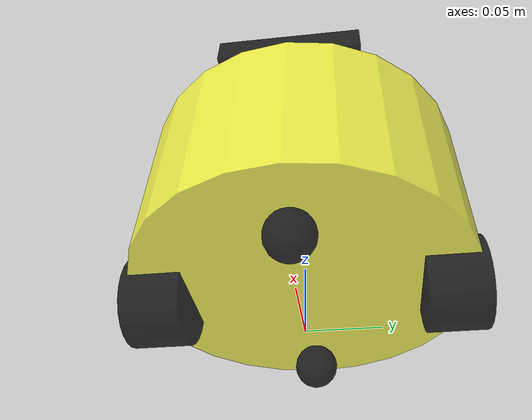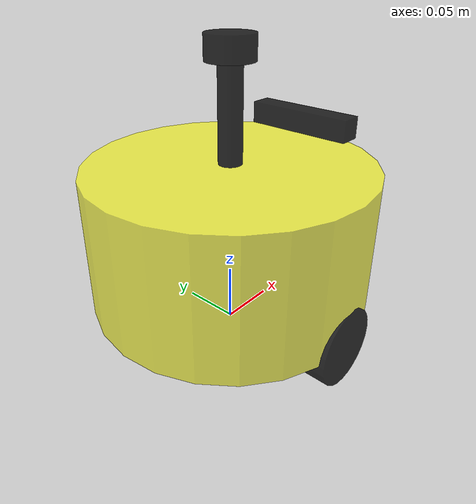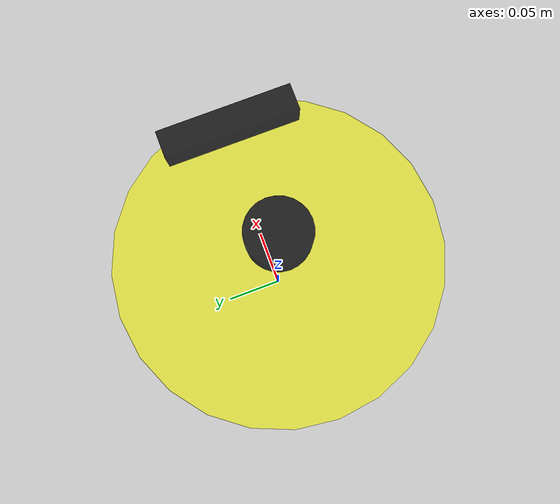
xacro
<?xml version="1.0"?>
<robot xmlns:xacro="http://www.ros.org/wiki/xacro" name="myrobot">
    <xacro:include filename="$(find robot_description)/urdf/laser.xacro" />
    <xacro:include filename="$(find robot_description)/urdf/camera.xacro" />
    <xacro:include filename="$(find robot_description)/urdf/common_inertia.xacro" />
    <link name="base_footprint"/>
    <joint name="base_joint" type="fixed">
        <parent link="base_footprint"/>
        <child link="base_link"/>
        <origin rpy="0 0 0" xyz="0.0 0.0 0.091"/>
    </joint>
    <link name="base_link">
        <visual>
            <origin xyz="0 0 0.0" rpy="0 0 0" />
            <geometry>
                <cylinder length="0.12" radius="0.12" />
            </geometry>
            <material name="blue">
                <color rgba="1.0 1.0 0.1 0.7"/>
            </material>
        </visual>
        <collision>
            <origin xyz="0 0 0.0" rpy="0 0 0" />
            <geometry>
                <cylinder length="0.12" radius="0.12" />
            </geometry>
            <material name="blue">
                <color rgba="0.1 0.1 1.0 0.5"/>
            </material>
        </collision>
        <xacro:cylinder_inertia m="1.0" r="0.12" h="0.12"/>
    </link>
    <gazebo reference="base_link">
        <material>Gazebo/Yellow</material>
    </gazebo>
    <xacro:macro name="caster_xacro" params="caster_name xyz">
        <link name="${caster_name}_caster_link">
            <visual>
                <origin xyz="0 0 0" rpy="0 0 0" />
                <geometry>
                    <sphere radius="0.016" />
                </geometry>
                <material name="black">
                    <color rgba="0.0 0.0 0.0 0.8"/>
                </material>
            </visual>
            <collision>
                <origin xyz="0 0 0" rpy="0 0 0" />
                <geometry>
                    <sphere radius="0.016" />
                </geometry>
                <material name="black">
                    <color rgba="0.0 0.0 0.0 0.8"/>
                </material>
            </collision>
            <xacro:sphere_inertia m="0.01" r="0.016" />
        </link>
        <gazebo reference="${caster_name}_caster_link">
            <mu1 value="0.0" />
            <mu2 value="0.0" />
            <kp value="1000000000.0" />
            <kd value="1.0" />
        </gazebo>

        <joint name="${caster_name}_caster_joint" type="fixed">
            <parent link="base_link" />
            <child link="${caster_name}_caster_link" />
            <origin xyz="${xyz}" />
            <axis xyz="0 0 0" />
        </joint>
    </xacro:macro>

    <xacro:macro name="wheel_xacro" params="wheel_name xyz">
        <link name="${wheel_name}_wheel_link">
            <visual>
                <origin xyz="0 0 0" rpy="1.57079 0 0" />
                <geometry>
                    <cylinder length="0.04" radius="0.032" />
                </geometry>
                <material name="black">
                    <color rgba="0.0 0.0 0.0 0.8"/>
                </material>
            </visual>
            <collision>
                <origin xyz="0 0 0" rpy="1.57079 0 0" />
                <geometry>
                    <cylinder length="0.04" radius="0.032" />
                </geometry>
                <material name="black">
                    <color rgba="0.0 0.0 0.0 0.8"/>
                </material>
            </collision>
            <xacro:cylinder_inertia m="0.1" h="0.04" r="0.032"/>
        </link>
        <gazebo reference="${wheel_name}_wheel_link">
            <mu1 value="20.0" />
            <mu2 value="20.0" />
            <kp value="1000000000.0" />
            <kd value="1.0" />
        </gazebo>

        <joint name="${wheel_name}_wheel_joint" type="continuous">
            <parent link="base_link" />
            <child link="${wheel_name}_wheel_link" />
            <origin xyz="${xyz}" />
            <axis xyz="0 1 0" />
        </joint>
    </xacro:macro>

    <xacro:laser_xacro xyz="0 0 0.10" />
    <xacro:camera_xacro xyz="0.10 0 0.075" />

    <xacro:wheel_xacro wheel_name="left" xyz="0 0.10 -0.06" />
    <xacro:wheel_xacro wheel_name="right" xyz="0 -0.10 -0.06" />
    <xacro:caster_xacro caster_name="front" xyz="0.08 0.0 -0.076" />
    <xacro:caster_xacro caster_name="back" xyz="-0.08 0.0 -0.076" />

    <xacro:include filename="$(find robot_description)/urdf/robot_ros2_control.xacro" />
    <xacro:myrobot_ros2_control />
</robot>

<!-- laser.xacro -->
<robot xmlns:xacro="http://www.ros.org/wiki/xacro">
   <xacro:include filename="$(find robot_description)/urdf/common_inertia.xacro" />
    <xacro:macro name="laser_xacro" params="xyz">
        <gazebo reference="laser_cylinder_link">
            <material>Gazebo/Black</material>
        </gazebo>
        <gazebo reference="laser_link">
            <material>Gazebo/Black</material>
        </gazebo>

        <!-- ============雷达支撑杆================ -->
        <link name="laser_cylinder_link">
            <visual>
                <origin xyz="0 0 0" rpy="0 0 0" />
                <geometry>
                    <cylinder length="0.10" radius="0.01" />
                </geometry>
                <material name="black">
                    <color rgba="0.0 0.0 0.0 0.8" />
                </material>
            </visual>
            <collision>
                <origin xyz="0 0 0" rpy="0 0 0" />
                <geometry>
                    <cylinder length="0.10" radius="0.01" />
                </geometry>
                <material name="black">
                    <color rgba="0.0 0.0 0.0 0.8" />
                </material>
            </collision>
            <xacro:cylinder_inertia m="0.01" r="0.01" h="0.10" />
        </link>

        <joint name="laser_cylinder_joint" type="fixed">
            <parent link="base_link" />
            <child link="laser_cylinder_link" />
            <origin xyz="${xyz}" />
        </joint>
        <!-- ============雷达================ -->
        <link name="laser_link">
            <visual>
                <origin xyz="0 0 0" rpy="0 0 0" />
                <geometry>
                    <cylinder length="0.02" radius="0.02" />
                </geometry>
                <material name="black">
                    <color rgba="0.0 0.0 0.0 0.8" />
                </material>
            </visual>
            <collision>
                <origin xyz="0 0 0" rpy="0 0 0" />
                <geometry>
                    <cylinder length="0.02" radius="0.02" />
                </geometry>
                <material name="black">
                    <color rgba="0.0 0.0 0.0 0.8" />
                </material>
            </collision>
            <xacro:cylinder_inertia m="0.03" r="0.02" h="0.02" />
        </link>

        <joint name="laser_joint" type="fixed">
            <parent link="laser_cylinder_link" />
            <child link="laser_link" />
            <origin xyz="0 0 0.05" />
        </joint>

        <gazebo reference="laser_link">
            <sensor name="laserscan" type="ray">
                <plugin name="laserscan" filename="libgazebo_ros_ray_sensor.so">
                    <ros>
                        <namespace>/</namespace>
                        <remapping>~/out:=scan</remapping>
                    </ros>
                    <output_type>sensor_msgs/LaserScan</output_type>
                    <frame_name>laser_link</frame_name>
                </plugin>
                <always_on>true</always_on>
                <visualize>true</visualize>
                <update_rate>5</update_rate>
                <pose>0 0 0 0 0 0</pose>
								<!-- 激光传感器配置 -->
                <ray>
                    <!-- 设置扫描范围 -->
                    <scan>
                        <horizontal>
                            <samples>360</samples>
                            <resolution>1.000000</resolution>
                            <min_angle>0.000000</min_angle>
                            <max_angle>6.280000</max_angle>
                        </horizontal>
                    </scan>
                    <!-- 设置扫描距离 -->
                    <range>
                        <min>0.120000</min>
                        <max>8.0</max>
                        <resolution>0.015000</resolution>
                    </range>
                    <!-- 设置噪声 -->
                    <noise>
                        <type>gaussian</type>
                        <mean>0.0</mean>
                        <stddev>0.01</stddev>
                    </noise>
                </ray>
            </sensor>
        </gazebo>

    </xacro:macro>

</robot>

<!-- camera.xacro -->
<robot xmlns:xacro="http://www.ros.org/wiki/xacro">
   <xacro:include filename="$(find robot_description)/urdf/common_inertia.xacro" />
    <xacro:macro name="camera_xacro" params="xyz">
        <!-- ============相机模块================ -->
        <link name="camera_link">
            <visual>
                <origin xyz="0 0 0.0" rpy="0 0 0" />
                <geometry>
                    <box size="0.02 0.10 0.02" />
                </geometry>
                <material name="black">
                    <color rgba="0.0 0.0 0.0 0.8"/>
                </material>
            </visual>
            <collision>
                <origin xyz="0 0 0.0" rpy="0 0 0" />
                <geometry>
                    <box size="0.02 0.10 0.02" />
                </geometry>
                <material name="black">
                    <color rgba="0.0 0.0 0.0 0.8"/>
                </material>
            </collision>
            <xacro:box_inertia m="0.01" w="0.02" h="0.10" d="0.02" />
        </link>

        <joint name="camera_joint" type="fixed">
            <parent link="base_link" />
            <child link="camera_link" />
            <origin xyz="${xyz}" />
        </joint>

        <gazebo reference="camera_link">
            <material>Gazebo/Black</material>
            <sensor type="depth" name="camera_sensor">
                <plugin name="depth_camera" filename="libgazebo_ros_camera.so"></plugin>
                <always_on>true</always_on>
                <update_rate>10</update_rate>
                <camera name="camera">
                    <horizontal_fov>1.5009831567</horizontal_fov>
                    <image>
                        <width>800</width>
                        <height>600</height>
                        <format>R8G8B8</format>
                    </image>
                    <distortion>
                        <k1>0.0</k1>
                        <k2>0.0</k2>
                        <k3>0.0</k3>
                        <p1>0.0</p1>
                        <p2>0.0</p2>
                        <center>0.5 0.5</center>
                    </distortion>
                </camera>
            </sensor>
        </gazebo>

    </xacro:macro>

</robot>
